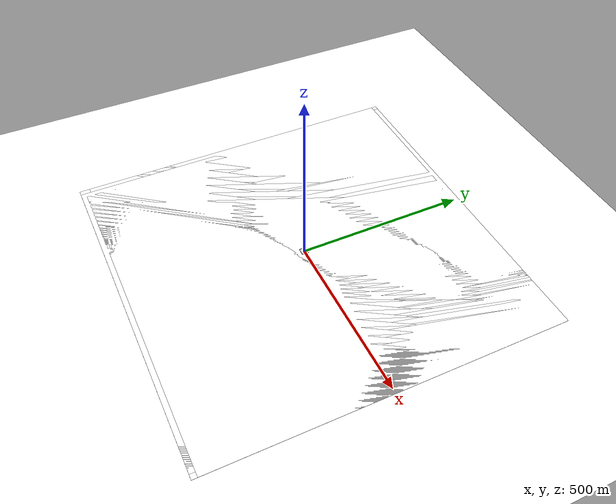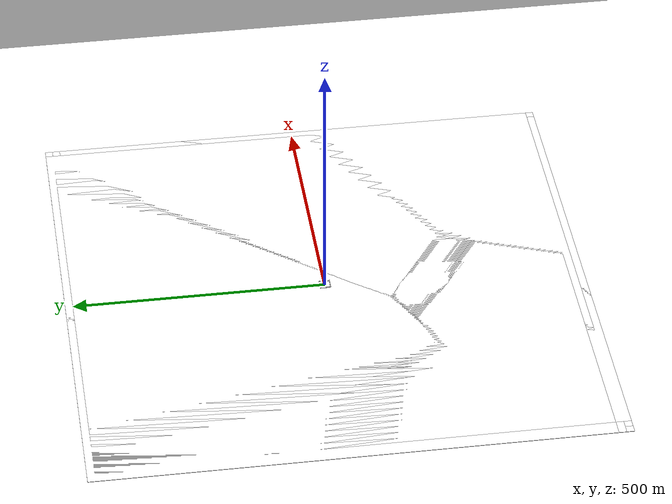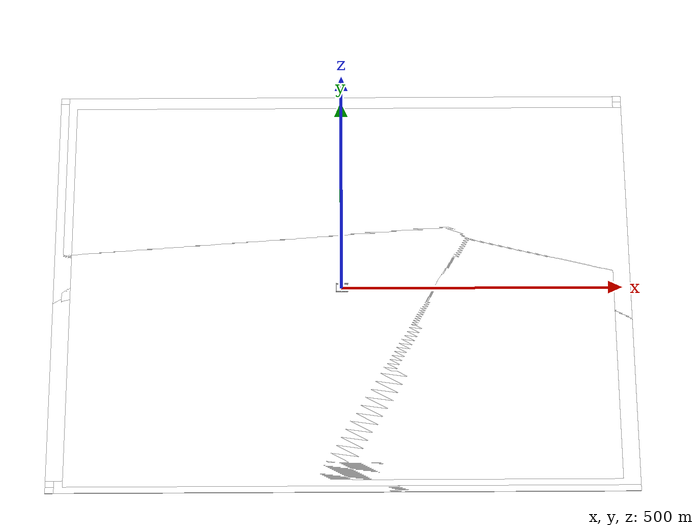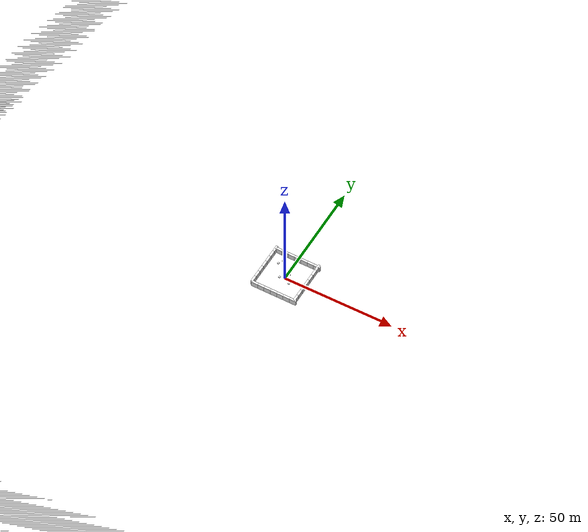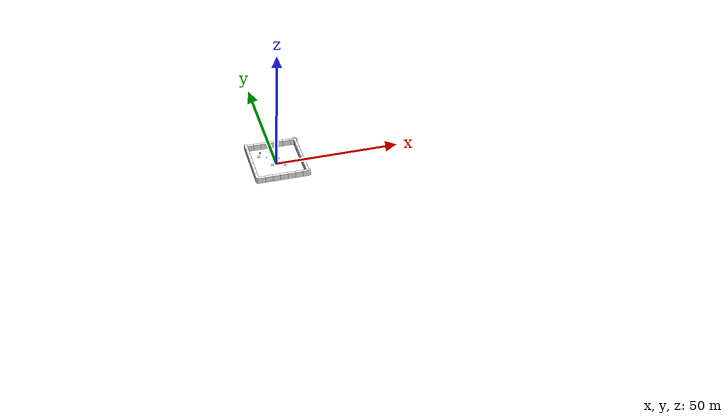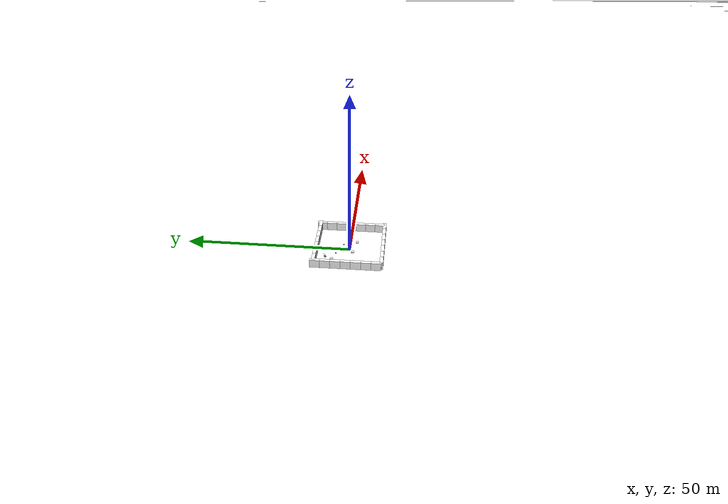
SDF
<sdf version="1.7">
 <world name="walled_world">
  <gravity>0 0 -9.8</gravity>
  <magnetic_field>6e-06 2.3e-05 -4.2e-05</magnetic_field>
  <scene><ambient>0.5 0.5 0.5 1</ambient></scene>
  <light name="sun" type="directional">
   <pose>0 0 10 0 0 0</pose>
   <diffuse>0.8 0.8 0.8 1</diffuse>
   <specular>0.2 0.2 0.2 1</specular>
   <attenuation>
    <range>1000</range>
    <constant>0.9</constant>
    <linear>0.01</linear>
    <quadratic>0.001</quadratic>
   </attenuation>
   <direction>-0.5 0.1 -0.9</direction>
  </light>
  <include><uri>model://grasspatch</uri><name>Grass1</name></include>
  <include><uri>model://grasspatch</uri><name>Grass2</name><pose>-15 0 0 0 0 0</pose></include>
  <include><uri>model://grasspatch</uri><name>Grass3</name><pose>15 0 0 0 0 0</pose></include>
  <include><uri>model://grasspatch</uri><name>Grass4</name><pose>0 15 0 0 0 0</pose></include>
  <include><uri>model://grasspatch</uri><name>Grass9</name><pose>15 15 0 0 0 0</pose></include>
  <include><uri>model://grasspatch</uri><name>Grass5</name><pose>-15 -15 0 0 0 0</pose></include>
  <include><uri>model://grasspatch</uri><name>Grass7</name><pose>15 -15 0 0 0 0</pose></include>
  <include><uri>model://grasspatch</uri><name>Grass8</name><pose>-15 15 0 0 0 0</pose></include>
  <include><uri>model://grasspatch</uri><name>Grass6</name><pose>-15 -15 0 0 0 0</pose></include>
  <include><uri>model://grasspatch</uri><name>Grass10</name><pose>0 -15 0 0 0 0</pose></include>
  <include><uri>model://PatientWheelChair</uri><name>Wheelchair</name><pose>-5 7 0 0 0 0</pose></include>
  <include><uri>model://construction_cone</uri><name>cone1</name><pose>-3 4 0 0 0 0</pose></include>
  <include><uri>model://construction_cone</uri><name>cone2</name><pose>1.5 2 0 0 0 0</pose></include>
  <include><uri>model://number1</uri><name>one</name><pose>-6 5 0.5 0 0 0</pose></include>
  <include><uri>model://number2</uri><name>two</name><pose>3 -2 0.5 0 0 0</pose></include>
  <include><uri>model://number3</uri><name>three</name><pose>-2 -1 0.5 0 0 0</pose></include>
  <include><uri>model://brick_box_3x1x3</uri><name>wall_north_1</name><pose>-8.5 10 0 0 0 0</pose></include>
  <include><uri>model://brick_box_3x1x3</uri><name>wall_north_2</name><pose>-5.5 10 0 0 0 0</pose></include>
  <include><uri>model://brick_box_3x1x3</uri><name>wall_north_3</name><pose>-2.5 10 0 0 0 0</pose></include>
  <include><uri>model://brick_box_3x1x3</uri><name>wall_north_4</name><pose>0.5 10 0 0 0 0</pose></include>
  <include><uri>model://brick_box_3x1x3</uri><name>wall_north_5</name><pose>3.5 10 0 0 0 0</pose></include>
  <include><uri>model://brick_box_3x1x3</uri><name>wall_north_6</name><pose>6.5 10 0 0 0 0</pose></include>
  <include><uri>model://brick_box_3x1x3</uri><name>wall_north_7</name><pose>9.5 10 0 0 0 0</pose></include>
  <include>
   <uri>model://brick_box_3x1x3</uri>
   <name>wall_east_1</name>
   <pose>10 -8.5 0 0 0 -1.5708</pose>
  </include>
  <include>
   <uri>model://brick_box_3x1x3</uri>
   <name>wall_east_2</name>
   <pose>10 -5.5 0 0 0 -1.5708</pose>
  </include>
  <include>
   <uri>model://brick_box_3x1x3</uri>
   <name>wall_east_3</name>
   <pose>10 -2.5 0 0 0 -1.5708</pose>
  </include>
  <include><uri>model://brick_box_3x1x3</uri><name>wall_east_4</name><pose>10 0.5 0 0 0 -1.5708</pose></include>
  <include><uri>model://brick_box_3x1x3</uri><name>wall_east_5</name><pose>10 3.5 0 0 0 -1.5708</pose></include>
  <include><uri>model://brick_box_3x1x3</uri><name>wall_east_6</name><pose>10 6.5 0 0 0 -1.5708</pose></include>
  <include><uri>model://brick_box_3x1x3</uri><name>wall_east_7</name><pose>10 9.5 0 0 0 -1.5708</pose></include>
  <include><uri>model://brick_box_3x1x3</uri><name>wall_south_1</name><pose>-8.5 -10 0 0 0 0</pose></include>
  <include><uri>model://brick_box_3x1x3</uri><name>wall_south_2</name><pose>-5.5 -10 0 0 0 0</pose></include>
  <include><uri>model://brick_box_3x1x3</uri><name>wall_south_3</name><pose>-2.5 -10 0 0 0 0</pose></include>
  <include><uri>model://brick_box_3x1x3</uri><name>wall_south_4</name><pose>0.5 -10 0 0 0 0</pose></include>
  <include><uri>model://brick_box_3x1x3</uri><name>wall_south_5</name><pose>3.5 -10 0 0 0 0</pose></include>
  <include><uri>model://brick_box_3x1x3</uri><name>wall_south_6</name><pose>6.5 -10 0 0 0 0</pose></include>
  <include><uri>model://brick_box_3x1x3</uri><name>wall_south_7</name><pose>9.5 -10 0 0 0 0</pose></include>
  <include>
   <uri>model://brick_box_3x1x3</uri>
   <name>wall_west_1</name>
   <pose>-10 -8.5 0 0 0 1.5708</pose>
  </include>
  <include>
   <uri>model://brick_box_3x1x3</uri>
   <name>wall_west_2</name>
   <pose>-10 -5.5 0 0 0 1.5708</pose>
  </include>
  <include>
   <uri>model://brick_box_3x1x3</uri>
   <name>wall_west_3</name>
   <pose>-10 -2.5 0 0 0 1.5708</pose>
  </include>
  <include><uri>model://brick_box_3x1x3</uri><name>wall_west_4</name><pose>-10 0.5 0 0 0 1.5708</pose></include>
  <include><uri>model://brick_box_3x1x3</uri><name>wall_west_5</name><pose>-10 3.5 0 0 0 1.5708</pose></include>
  <include><uri>model://brick_box_3x1x3</uri><name>wall_west_6</name><pose>-10 6.5 0 0 0 1.5708</pose></include>
  <include><uri>model://brick_box_3x1x3</uri><name>wall_west_7</name><pose>-10 9.5 0 0 0 1.5708</pose></include>
 </world>
</sdf>

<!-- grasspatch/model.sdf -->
<sdf version='1.4'>
  <model name='grasspatch'>
    <static>true</static>
    <link name='link'>
      <collision name='collision'>
        <pose>0 0 0 0 0 0</pose>
        <geometry>
          <plane>
            <normal>0 0 1</normal>
            <size>1000 1000</size>
          </plane>
        </geometry>
        <surface>
          <friction>
            <ode>
              <mu>0.5</mu>
              <mu2>.5</mu2>
            </ode>
          </friction>
        </surface>
      </collision>

      <visual name='visual_s10'>
        <pose>0 0 0 0 0 0</pose>
        <cast_shadows>false</cast_shadows>
        <geometry>
          <plane>
            <normal>0 0 1</normal>
            <size>1000 1000</size>
          </plane>
        </geometry>
          <material>
         <diffuse>1.0 1.0 1.0</diffuse>
          <specular>1.0 1.0 1.0</specular>
		  <pbr>
			<metal>
			   <albedo_map>materials/textures/grass_dry.png</albedo_map>
			   <normal_map>materials/textures/grass_dry.png</normal_map>
			</metal>
		  </pbr>
		</material>
      </visual>

    </link>
  </model>
</sdf>

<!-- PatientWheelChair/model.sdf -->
<sdf version="1.6">
  <model name="PatientWheelChair">
   <static>true</static>
    <link name="body">
      <pose>0 0 0 0 0 0</pose>

      <visual name="visual">
        <geometry>
          <mesh>
            <uri>model://PatientWheelChair/meshes/PatientWheelChair.obj</uri>
          </mesh>
        </geometry>
      </visual>

      <collision name="collision">
        <geometry>
          <mesh>
            <uri>model://PatientWheelChair/meshes/PatientWheelChair_Col.obj</uri>
          </mesh>
        </geometry>
      </collision>

    </link>
  </model>
</sdf>

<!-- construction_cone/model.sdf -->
<sdf version="1.5">
  <model name="Construction Cone">
    <link name="link">
      <collision name="collision">
        <geometry>
          <mesh>
            <scale>10 10 10</scale>
            <uri>file://isr-testbed/construction_cone/meshes/construction_cone.dae</uri>
          </mesh>
        </geometry>
      </collision>
      <visual name="visual">
        <geometry>
          <mesh>
            <scale>10 10 10</scale>
            <uri>file://isr-testbed/construction_cone/meshes/construction_cone.dae</uri>
          </mesh>
        </geometry>
      </visual>
    </link>
  </model>
</sdf>

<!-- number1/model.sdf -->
<sdf version="1.6">
  <model name="Number1">
    <pose>0 0 0.4 0 0 0</pose>
    <static>true</static>
    <link name="link">
      <visual name="visual">
        <geometry>
          <mesh>
            <uri>model://number1/meshes/number.dae</uri>
          </mesh>
        </geometry>
        <material>
          <diffuse>1.0 1.0 1.0</diffuse>
          <specular>1.0 1.0 1.0</specular>
          <pbr>
            <metal>
              <albedo_map>model://number1/materials/textures/number1.png</albedo_map>
            </metal>
          </pbr>
          <!-- fallback to script if no PBR support-->
          <script>
            <uri>model://number1/materials/scripts</uri>
            <uri>model://number1/materials/textures</uri>
            <name>Number/Three</name>
          </script>
        </material>
      </visual>
    </link>
  </model>
</sdf>

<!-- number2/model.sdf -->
<sdf version="1.6">
  <model name="Number2">
    <pose>0 0 0.4 0 0 0</pose>
    <static>true</static>
    <link name="link">
      <visual name="visual">
        <geometry>
          <mesh>
            <uri>model://number1/meshes/number.dae</uri>
          </mesh>
        </geometry>
        <material>
          <diffuse>1.0 1.0 1.0</diffuse>
          <specular>1.0 1.0 1.0</specular>
          <pbr>
            <metal>
              <albedo_map>model://number2/materials/textures/number2.png</albedo_map>
            </metal>
          </pbr>
          <!-- fallback to script if no PBR support-->
          <script>
            <uri>model://number2/materials/scripts</uri>
            <uri>model://number2/materials/textures</uri>
            <name>Number/Two</name>
          </script>
        </material>
      </visual>
    </link>
  </model>
</sdf>

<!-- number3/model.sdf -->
<sdf version="1.5">
  <model name="number3">
    <pose>0 0 0.4 0 0 0</pose>
    <static>true</static>
    <link name="link">
      <visual name="visual">
        <geometry>
          <mesh>
            <uri>model://number1/meshes/number.dae</uri>
          </mesh>
        </geometry>
        <material>
          <diffuse>1.0 1.0 1.0</diffuse>
          <specular>1.0 1.0 1.0</specular>
          <pbr>
            <metal>
              <albedo_map>model://number3/materials/textures/number3.png</albedo_map>
            </metal>
          </pbr>
          <!-- fallback to script if no PBR support-->
          <script>
            <uri>model://number3/materials/scripts</uri>
            <uri>model://number3/materials/textures</uri>
            <name>Number/Three</name>
          </script>
        </material>
      </visual>
    </link>
  </model>
</sdf>

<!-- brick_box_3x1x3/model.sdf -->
<sdf version="1.5">
  <model name="brick_box_3x1x3">
    <static>true</static>
    <link name="chassis">
      <pose>0 0 1.5 0 0 0</pose>
      <collision name="collision">
        <geometry>
          <box>
            <size>3.0 1.0 3.0</size>
          </box>
        </geometry>
      </collision>
      <visual name="visual">
        <geometry>
          <mesh>
            <uri>model://brick_box_3x1x3/meshes/simple_box.dae</uri>
            <scale>3.0 1.0 3.0</scale>
          </mesh>
        </geometry>
        <material>
          <diffuse>1.0 1.0 1.0</diffuse>
          <specular>1.0 1.0 1.0</specular>
          <pbr>
            <metal>
              <albedo_map>model://brick_box_3x1x3/materials/textures/simple_box.png</albedo_map>
            </metal>
          </pbr>
          <!-- fallback to script if no PBR support-->
          <script>
            <uri>model://brick_box_3x1x3/materials/scripts</uri>
            <uri>model://brick_box_3x1x3/materials/textures</uri>
            <name>Number/Three</name>
          </script>
        </material>
      </visual>
    </link>
  </model>
</sdf>
